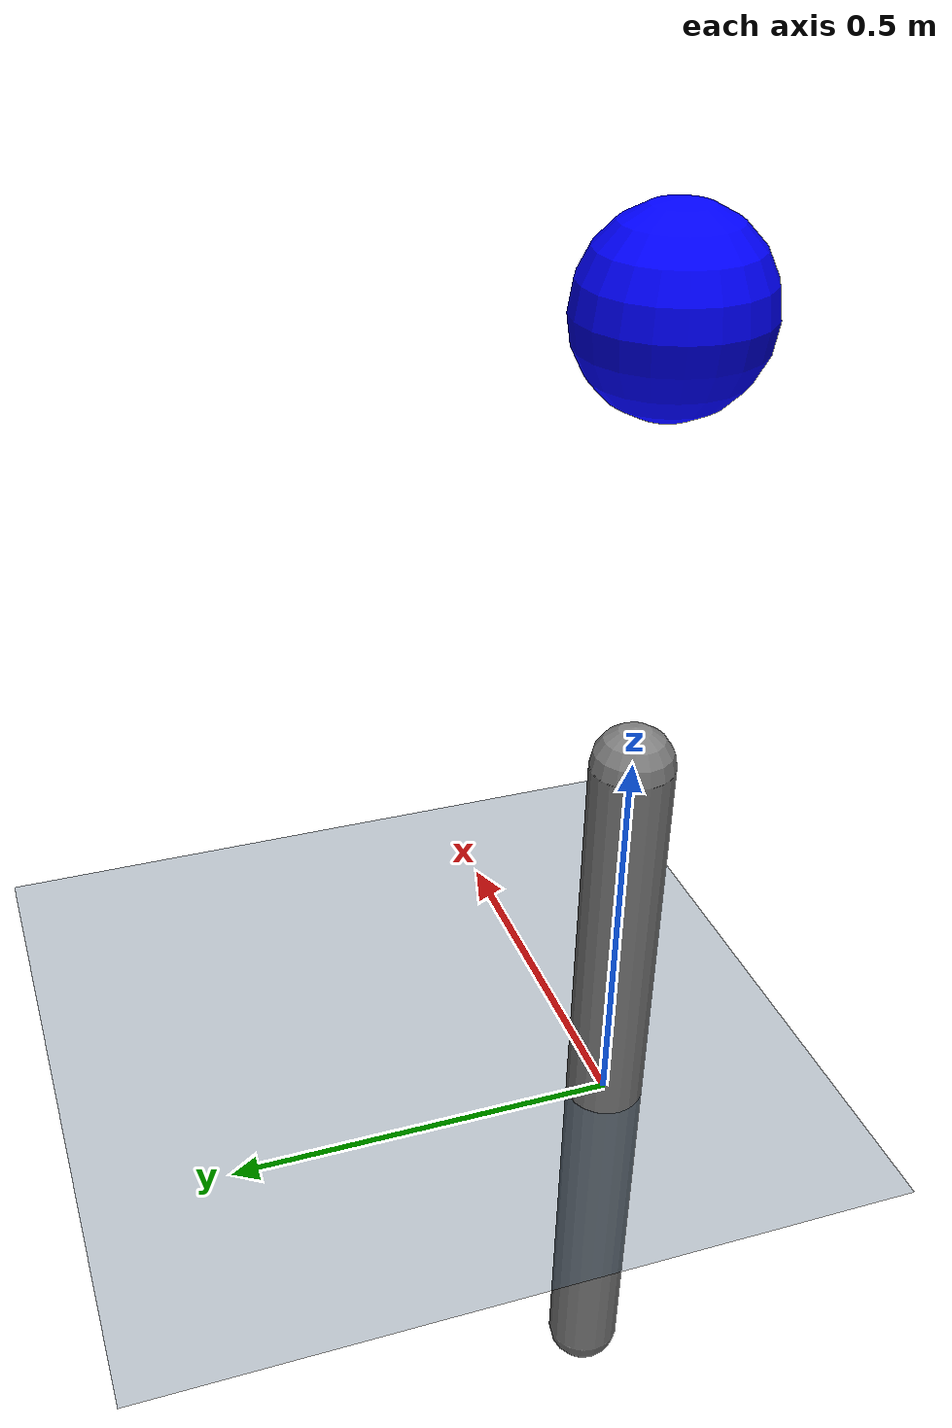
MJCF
<mujoco model="3D_SLIP">
    <compiler angle="radian"/>

    <!-- Options for simulation -->
    <option timestep="0.01" integrator="RK4" gravity="0 0 -9.81"/>

    <!-- World body -->
    <worldbody>

        <!-- Ground plane -->
        <geom type="plane" pos="0 0 0" size="10 10 0.1" material="MatPlane"/>

        <!-- Body (top mass) -->
        <body name="body" pos="0 0 1">
            <geom name="body_geom" type="sphere" size="0.1" density="1000" rgba="0 0 1 1"/>
            <joint name="free_joint" type="free"/>
        </body>

        <!-- Leg (massless) -->
        <body name="leg" pos="0 0 0.5">
            <geom name="leg_geom" type="capsule" fromto="0 0 0 0 0 -1" size="0.05" rgba="0.5 0.5 0.5 1"/>
            <joint name="leg_spring" type="slide" axis="0 0 1" pos="0 0 -0.5" range="0.1 1.0"/>
        </body>

        <!-- Foot (contact point) -->
        <body name="foot" pos="0 0 0">
            <geom name="foot_geom" type="sphere" size="0.05" rgba="1 0 0 1"/>
        </body>
    </worldbody>

    <!-- Tendon for Spring between body and foot (acts like a spring constraint) -->
    <tendon>
        <spatial name="spring_tendon" stiffness="1000" damping="5">
            <site pos="0 0 1" body="body"/>  <!-- Attach at the body's center -->
            <site pos="0 0 0" body="foot"/>  <!-- Attach at the foot -->
        </spatial>
    </tendon>

    <!-- Actuation for the spring (optional if you want to control the leg) -->
    <actuator>
        <motor joint="leg_spring" ctrlrange="0 1" ctrllimited="true" gear="100"/>
    </actuator>

    <!-- Materials -->
    <asset>
        <texture name="texplane" type="2d" builtin="checker" width="512" height="512" rgb1="0.2 0.3 0.4" rgb2="0.1 0.2 0.3"/>
        <material name="MatPlane" texture="texplane" texrepeat="1 1" reflectance="0.3"/>
    </asset>

</mujoco>
